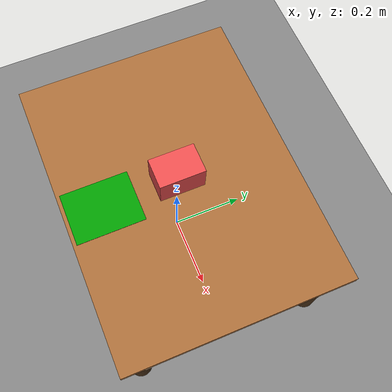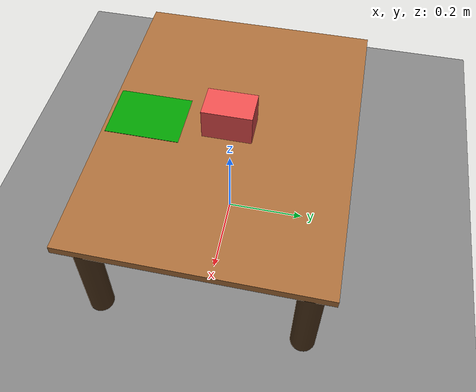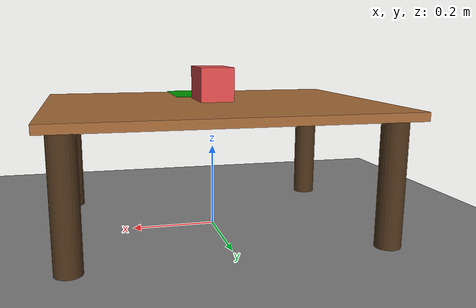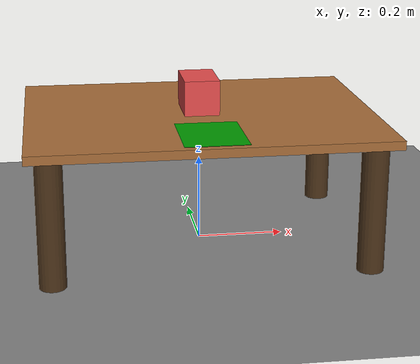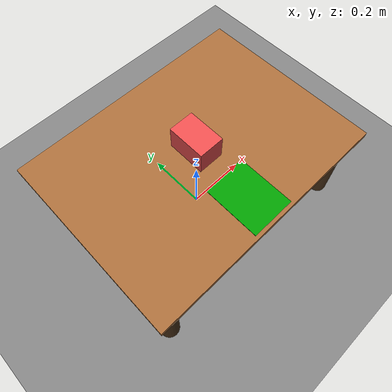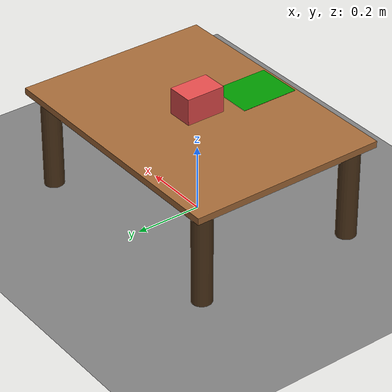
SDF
<?xml version="1.0"?>
<sdf version="1.8">
  <world name="dual_arm_grasp_place">

    <!-- Physics -->
    <physics name="default" type="dart">
      <max_step_size>0.001</max_step_size>
      <real_time_factor>1.0</real_time_factor>
    </physics>

    <!-- Plugins -->
    <plugin filename="gz-sim-physics-system"
            name="gz::sim::systems::Physics"/>
    <plugin filename="gz-sim-scene-broadcaster-system"
            name="gz::sim::systems::SceneBroadcaster"/>
    <plugin filename="gz-sim-user-commands-system"
            name="gz::sim::systems::UserCommands"/>
    <plugin filename="gz-sim-sensors-system"
            name="gz::sim::systems::Sensors">
      <render_engine>ogre2</render_engine>
    </plugin>
    <plugin filename="gz-sim-contact-system"
            name="gz::sim::systems::Contact"/>

    <!-- Lighting -->
    <light name="sun" type="directional">
      <cast_shadows>true</cast_shadows>
      <pose>0 0 10 0 0 0</pose>
      <diffuse>0.8 0.8 0.8 1</diffuse>
      <specular>0.2 0.2 0.2 1</specular>
      <direction>-0.5 0.1 -0.9</direction>
    </light>

    <!-- Ground plane -->
    <model name="ground_plane">
      <static>true</static>
      <link name="link">
        <collision name="collision">
          <geometry>
            <plane>
              <normal>0 0 1</normal>
              <size>20 20</size>
            </plane>
          </geometry>
        </collision>
        <visual name="visual">
          <geometry>
            <plane>
              <normal>0 0 1</normal>
              <size>20 20</size>
            </plane>
          </geometry>
          <material>
            <ambient>0.4 0.4 0.4 1</ambient>
            <diffuse>0.5 0.5 0.5 1</diffuse>
          </material>
        </visual>
      </link>
    </model>

    <!-- TABLE — workspace surface between the two arms              -->
    <model name="table">
      <static>true</static>
      <pose>0 0 0 0 0 0</pose>
      <link name="table_top">
        <pose>0 0 0.3 0 0 0</pose>
        <collision name="collision">
          <geometry>
            <box><size>0.8 0.6 0.02</size></box>
          </geometry>
        </collision>
        <visual name="visual">
          <geometry>
            <box><size>0.8 0.6 0.02</size></box>
          </geometry>
          <material>
            <ambient>0.55 0.35 0.18 1</ambient>
            <diffuse>0.65 0.42 0.22 1</diffuse>
          </material>
        </visual>
      </link>
      <!-- Table legs -->
      <link name="leg_fl">
        <pose> 0.35  0.25 0.15 0 0 0</pose>
        <collision name="c"><geometry><cylinder><radius>0.03</radius><length>0.30</length></cylinder></geometry></collision>
        <visual name="v"><geometry><cylinder><radius>0.03</radius><length>0.30</length></cylinder></geometry>
          <material><ambient>0.3 0.2 0.1 1</ambient></material></visual>
      </link>
      <link name="leg_fr">
        <pose> 0.35 -0.25 0.15 0 0 0</pose>
        <collision name="c"><geometry><cylinder><radius>0.03</radius><length>0.30</length></cylinder></geometry></collision>
        <visual name="v"><geometry><cylinder><radius>0.03</radius><length>0.30</length></cylinder></geometry>
          <material><ambient>0.3 0.2 0.1 1</ambient></material></visual>
      </link>
      <link name="leg_bl">
        <pose>-0.35  0.25 0.15 0 0 0</pose>
        <collision name="c"><geometry><cylinder><radius>0.03</radius><length>0.30</length></cylinder></geometry></collision>
        <visual name="v"><geometry><cylinder><radius>0.03</radius><length>0.30</length></cylinder></geometry>
          <material><ambient>0.3 0.2 0.1 1</ambient></material></visual>
      </link>
      <link name="leg_br">
        <pose>-0.35 -0.25 0.15 0 0 0</pose>
        <collision name="c"><geometry><cylinder><radius>0.03</radius><length>0.30</length></cylinder></geometry></collision>
        <visual name="v"><geometry><cylinder><radius>0.03</radius><length>0.30</length></cylinder></geometry>
          <material><ambient>0.3 0.2 0.1 1</ambient></material></visual>
      </link>
    </model>

    <!-- GRASP BOX — object to be picked and placed                  -->
    <!-- Position: center of table surface (x=0, y=0, z=0.35)       -->
    <!-- Both arms grasp this from opposing sides (±y direction)     -->
    <model name="grasp_box">
      <pose>0 0 0.355 0 0 0</pose>
      <link name="box_link">
        <inertial>
          <mass>0.3</mass>
          <inertia>
            <ixx>0.0003</ixx><ixy>0</ixy><ixz>0</ixz>
            <iyy>0.0003</iyy><iyz>0</iyz>
            <izz>0.0003</izz>
          </inertia>
        </inertial>
        <collision name="collision">
          <geometry>
            <box><size>0.08 0.12 0.08</size></box>
          </geometry>
          <surface>
            <friction>
              <ode>
                <mu>0.9</mu>
                <mu2>0.9</mu2>
              </ode>
            </friction>
          </surface>
        </collision>
        <visual name="visual">
          <geometry>
            <box><size>0.08 0.12 0.08</size></box>
          </geometry>
          <material>
            <ambient>0.8 0.2 0.2 1</ambient>
            <diffuse>0.9 0.3 0.3 1</diffuse>
            <specular>0.3 0.1 0.1 1</specular>
          </material>
        </visual>
      </link>
    </model>

    <!-- PLACE ZONE MARKER — visual indicator of the target location -->
    <!-- Where the box should be placed after transfer               -->
    <!-- Position: right side of table (y=-0.2)                     -->
    <model name="place_zone_marker">
      <static>true</static>
      <pose>0 -0.2 0.312 0 0 0</pose>
      <link name="marker_link">
        <visual name="visual">
          <geometry>
            <box><size>0.12 0.16 0.002</size></box>
          </geometry>
          <material>
            <ambient>0.1 0.8 0.1 0.7</ambient>
            <diffuse>0.1 0.9 0.1 0.7</diffuse>
          </material>
        </visual>
      </link>
    </model>

    <!-- Place zone label (thin box with different color) -->
    <model name="place_zone_border">
      <static>true</static>
      <pose>0 -0.2 0.313 0 0 0</pose>
      <link name="border_link">
        <visual name="visual">
          <geometry>
            <box><size>0.14 0.18 0.001</size></box>
          </geometry>
          <material>
            <ambient>0.0 0.5 0.0 1</ambient>
            <diffuse>0.0 0.6 0.0 1</diffuse>
          </material>
        </visual>
      </link>
    </model>

  </world>
</sdf>
